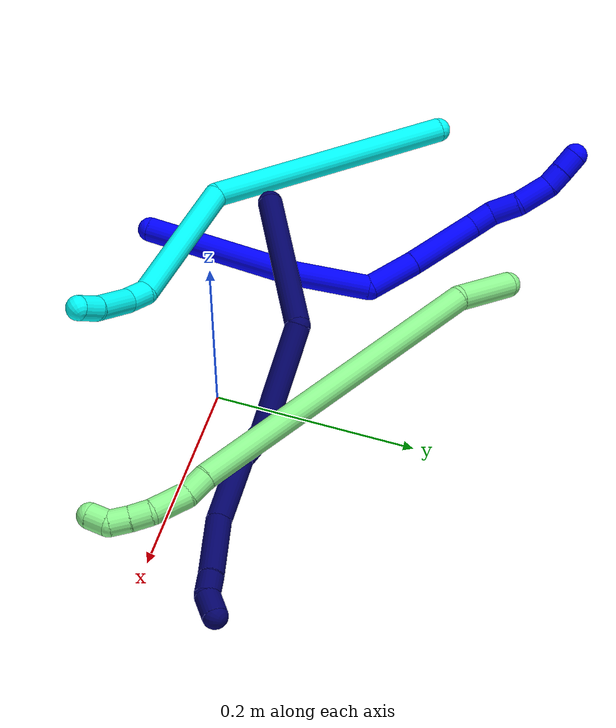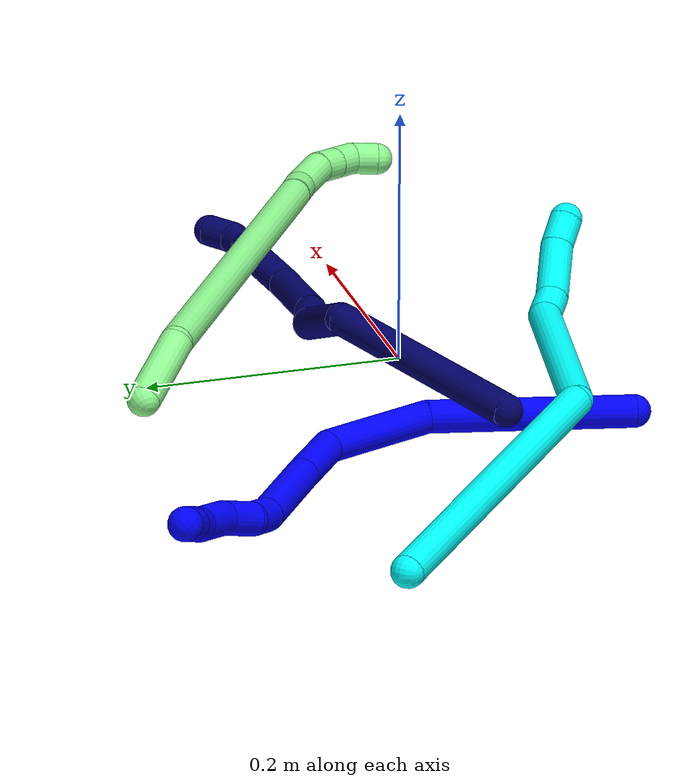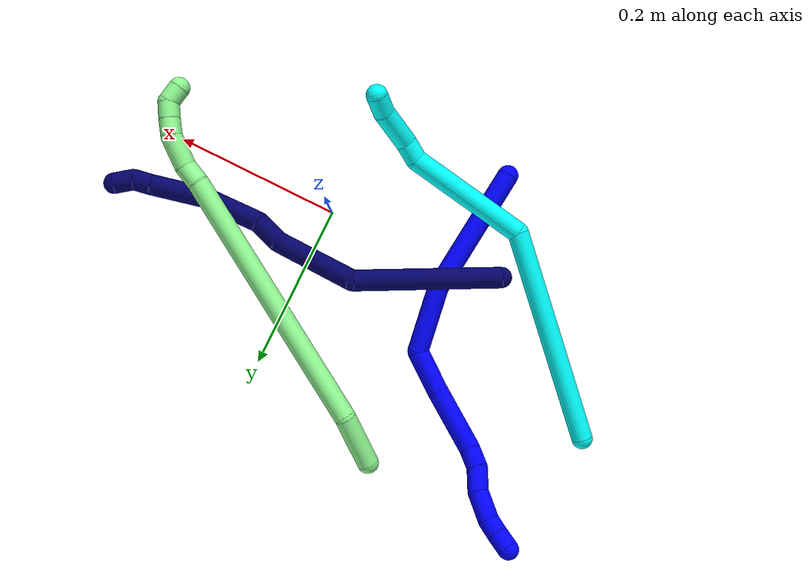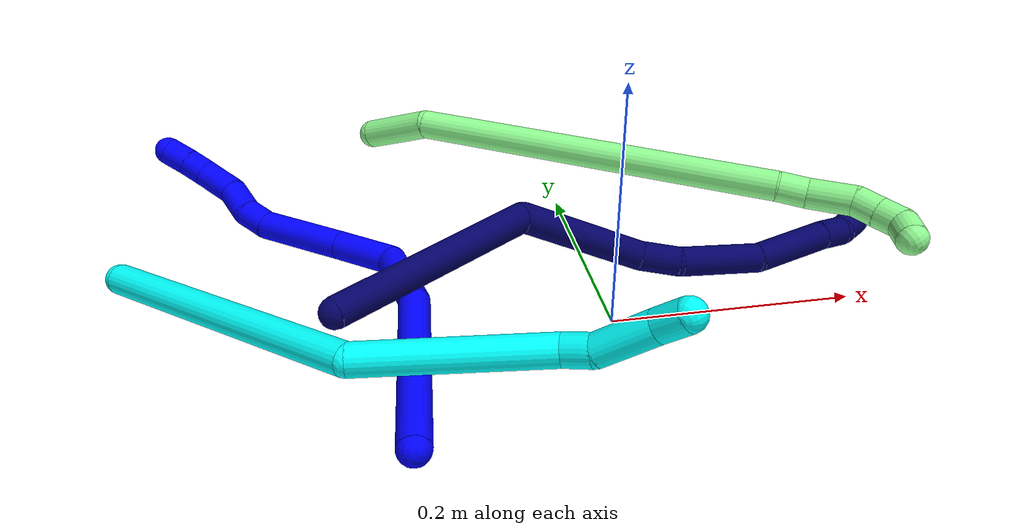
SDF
<sdf version="1.7">
 <world name="default">
  <model name="1">
   <static>0</static>
   <link name="1">
    <collision name="collision-cylinder-e_1_1_4">
     <pose>-0.033387 0.044102 0.056152 -0.665776 -0.437388 0.153386</pose>
     <geometry><cylinder><radius>0.0125</radius><length>0.157642</length></cylinder></geometry>
     <surface>
      <friction><ode><mu>1.16</mu><mu2>1.16</mu2><slip1>0</slip1><slip2>0</slip2></ode></friction>
      <contact><ode><kp>1e+06</kp><kd>1</kd><max_vel>0</max_vel><min_depth>0.001</min_depth></ode></contact>
     </surface>
    </collision>
    <visual name="visual-cylinder-e_1_1_4">
     <pose>-0.033387 0.044102 0.056152 -0.665776 -0.437388 0.153386</pose>
     <geometry><cylinder><radius>0.0125</radius><length>0.157642</length></cylinder></geometry>
     <material><ambient>0 0 1 1</ambient></material>
    </visual>
    <collision name="collision-cylinder-e_2_4_5">
     <pose>-0.074931 0.105935 0.147477 -0.466927 -0.204237 0.048727</pose>
     <geometry><cylinder><radius>0.0125</radius><length>0.080449</length></cylinder></geometry>
     <surface>
      <friction><ode><mu>1.16</mu><mu2>1.16</mu2><slip1>0</slip1><slip2>0</slip2></ode></friction>
      <contact><ode><kp>1e+06</kp><kd>1</kd><max_vel>0</max_vel><min_depth>0.001</min_depth></ode></contact>
     </surface>
    </collision>
    <visual name="visual-cylinder-e_2_4_5">
     <pose>-0.074931 0.105935 0.147477 -0.466927 -0.204237 0.048727</pose>
     <geometry><cylinder><radius>0.0125</radius><length>0.080449</length></cylinder></geometry>
     <material><ambient>0 0 1 1</ambient></material>
    </visual>
    <collision name="collision-cylinder-e_3_5_6">
     <pose>-0.068763 0.134014 0.202483 -0.480911 0.569574 -0.143316</pose>
     <geometry><cylinder><radius>0.0125</radius><length>0.053132</length></cylinder></geometry>
     <surface>
      <friction><ode><mu>1.16</mu><mu2>1.16</mu2><slip1>0</slip1><slip2>0</slip2></ode></friction>
      <contact><ode><kp>1e+06</kp><kd>1</kd><max_vel>0</max_vel><min_depth>0.001</min_depth></ode></contact>
     </surface>
    </collision>
    <visual name="visual-cylinder-e_3_5_6">
     <pose>-0.068763 0.134014 0.202483 -0.480911 0.569574 -0.143316</pose>
     <geometry><cylinder><radius>0.0125</radius><length>0.053132</length></cylinder></geometry>
     <material><ambient>0 0 1 1</ambient></material>
    </visual>
    <collision name="collision-cylinder-e_4_6_7">
     <pose>-0.031924 0.159634 0.250251 -0.500299 0.615527 -0.162073</pose>
     <geometry><cylinder><radius>0.0125</radius><length>0.077981</length></cylinder></geometry>
     <surface>
      <friction><ode><mu>1.16</mu><mu2>1.16</mu2><slip1>0</slip1><slip2>0</slip2></ode></friction>
      <contact><ode><kp>1e+06</kp><kd>1</kd><max_vel>0</max_vel><min_depth>0.001</min_depth></ode></contact>
     </surface>
    </collision>
    <visual name="visual-cylinder-e_4_6_7">
     <pose>-0.031924 0.159634 0.250251 -0.500299 0.615527 -0.162073</pose>
     <geometry><cylinder><radius>0.0125</radius><length>0.077981</length></cylinder></geometry>
     <material><ambient>0 0 1 1</ambient></material>
    </visual>
    <collision name="collision-cylinder-e_5_7_8">
     <pose>-0.003623 0.182466 0.285745 -0.785404 0.496177 -0.209083</pose>
     <geometry><cylinder><radius>0.0125</radius><length>0.02432</length></cylinder></geometry>
     <surface>
      <friction><ode><mu>1.16</mu><mu2>1.16</mu2><slip1>0</slip1><slip2>0</slip2></ode></friction>
      <contact><ode><kp>1e+06</kp><kd>1</kd><max_vel>0</max_vel><min_depth>0.001</min_depth></ode></contact>
     </surface>
    </collision>
    <visual name="visual-cylinder-e_5_7_8">
     <pose>-0.003623 0.182466 0.285745 -0.785404 0.496177 -0.209083</pose>
     <geometry><cylinder><radius>0.0125</radius><length>0.02432</length></cylinder></geometry>
     <material><ambient>0 0 1 1</ambient></material>
    </visual>
    <collision name="collision-cylinder-e_6_8_9">
     <pose>0.004477 0.201177 0.30258 -0.877043 0.158017 -0.074226</pose>
     <geometry><cylinder><radius>0.0125</radius><length>0.02937</length></cylinder></geometry>
     <surface>
      <friction><ode><mu>1.16</mu><mu2>1.16</mu2><slip1>0</slip1><slip2>0</slip2></ode></friction>
      <contact><ode><kp>1e+06</kp><kd>1</kd><max_vel>0</max_vel><min_depth>0.001</min_depth></ode></contact>
     </surface>
    </collision>
    <visual name="visual-cylinder-e_6_8_9">
     <pose>0.004477 0.201177 0.30258 -0.877043 0.158017 -0.074226</pose>
     <geometry><cylinder><radius>0.0125</radius><length>0.02937</length></cylinder></geometry>
     <material><ambient>0 0 1 1</ambient></material>
    </visual>
    <collision name="collision-cylinder-e_7_9_10">
     <pose>0.014847 0.223496 0.323175 -0.778593 0.469014 -0.195387</pose>
     <geometry><cylinder><radius>0.0125</radius><length>0.035658</length></cylinder></geometry>
     <surface>
      <friction><ode><mu>1.16</mu><mu2>1.16</mu2><slip1>0</slip1><slip2>0</slip2></ode></friction>
      <contact><ode><kp>1e+06</kp><kd>1</kd><max_vel>0</max_vel><min_depth>0.001</min_depth></ode></contact>
     </surface>
    </collision>
    <visual name="visual-cylinder-e_7_9_10">
     <pose>0.014847 0.223496 0.323175 -0.778593 0.469014 -0.195387</pose>
     <geometry><cylinder><radius>0.0125</radius><length>0.035658</length></cylinder></geometry>
     <material><ambient>0 0 1 1</ambient></material>
    </visual>
    <collision name="collision-cylinder-e_8_10_11">
     <pose>0.029128 0.241407 0.338487 -1.03641 0.671203 -0.392629</pose>
     <geometry><cylinder><radius>0.0125</radius><length>0.02001</length></cylinder></geometry>
     <surface>
      <friction><ode><mu>1.16</mu><mu2>1.16</mu2><slip1>0</slip1><slip2>0</slip2></ode></friction>
      <contact><ode><kp>1e+06</kp><kd>1</kd><max_vel>0</max_vel><min_depth>0.001</min_depth></ode></contact>
     </surface>
    </collision>
    <visual name="visual-cylinder-e_8_10_11">
     <pose>0.029128 0.241407 0.338487 -1.03641 0.671203 -0.392629</pose>
     <geometry><cylinder><radius>0.0125</radius><length>0.02001</length></cylinder></geometry>
     <material><ambient>0 0 1 1</ambient></material>
    </visual>
    <collision name="collision-cylinder-e_9_11_2">
     <pose>0.04237 0.255011 0.346784 -1.01024 0.714051 -0.406823</pose>
     <geometry><cylinder><radius>0.0125</radius><length>0.021438</length></cylinder></geometry>
     <surface>
      <friction><ode><mu>1.16</mu><mu2>1.16</mu2><slip1>0</slip1><slip2>0</slip2></ode></friction>
      <contact><ode><kp>1e+06</kp><kd>1</kd><max_vel>0</max_vel><min_depth>0.001</min_depth></ode></contact>
     </surface>
    </collision>
    <visual name="visual-cylinder-e_9_11_2">
     <pose>0.04237 0.255011 0.346784 -1.01024 0.714051 -0.406823</pose>
     <geometry><cylinder><radius>0.0125</radius><length>0.021438</length></cylinder></geometry>
     <material><ambient>0 0 1 1</ambient></material>
    </visual>
    <collision name="collision-sphere-2">
     <pose>0.04939 0.261872 0.35109 0 -0 0</pose>
     <geometry><sphere><radius>0.0125</radius></sphere></geometry>
     <surface>
      <friction><ode><mu>1.16</mu><mu2>1.16</mu2><slip1>0</slip1><slip2>0</slip2></ode></friction>
      <contact><ode><kp>1e+06</kp><kd>1</kd><max_vel>0</max_vel><min_depth>0.001</min_depth></ode></contact>
     </surface>
    </collision>
    <visual name="visual-sphere-2">
     <pose>0.04939 0.261872 0.35109 0 -0 0</pose>
     <geometry><sphere><radius>0.0125</radius></sphere></geometry>
     <material><ambient>0 0 1 1</ambient></material>
    </visual>
    <collision name="collision-sphere-11">
     <pose>0.03535 0.24815 0.342477 0 -0 0</pose>
     <geometry><sphere><radius>0.0125</radius></sphere></geometry>
     <surface>
      <friction><ode><mu>1.16</mu><mu2>1.16</mu2><slip1>0</slip1><slip2>0</slip2></ode></friction>
      <contact><ode><kp>1e+06</kp><kd>1</kd><max_vel>0</max_vel><min_depth>0.001</min_depth></ode></contact>
     </surface>
    </collision>
    <visual name="visual-sphere-11">
     <pose>0.03535 0.24815 0.342477 0 -0 0</pose>
     <geometry><sphere><radius>0.0125</radius></sphere></geometry>
     <material><ambient>0 0 1 1</ambient></material>
    </visual>
    <collision name="collision-sphere-10">
     <pose>0.022905 0.234665 0.334496 0 -0 0</pose>
     <geometry><sphere><radius>0.0125</radius></sphere></geometry>
     <surface>
      <friction><ode><mu>1.16</mu><mu2>1.16</mu2><slip1>0</slip1><slip2>0</slip2></ode></friction>
      <contact><ode><kp>1e+06</kp><kd>1</kd><max_vel>0</max_vel><min_depth>0.001</min_depth></ode></contact>
     </surface>
    </collision>
    <visual name="visual-sphere-10">
     <pose>0.022905 0.234665 0.334496 0 -0 0</pose>
     <geometry><sphere><radius>0.0125</radius></sphere></geometry>
     <material><ambient>0 0 1 1</ambient></material>
    </visual>
    <collision name="collision-sphere-9">
     <pose>0.006788 0.212328 0.311853 0 -0 0</pose>
     <geometry><sphere><radius>0.0125</radius></sphere></geometry>
     <surface>
      <friction><ode><mu>1.16</mu><mu2>1.16</mu2><slip1>0</slip1><slip2>0</slip2></ode></friction>
      <contact><ode><kp>1e+06</kp><kd>1</kd><max_vel>0</max_vel><min_depth>0.001</min_depth></ode></contact>
     </surface>
    </collision>
    <visual name="visual-sphere-9">
     <pose>0.006788 0.212328 0.311853 0 -0 0</pose>
     <geometry><sphere><radius>0.0125</radius></sphere></geometry>
     <material><ambient>0 0 1 1</ambient></material>
    </visual>
    <collision name="collision-sphere-4">
     <pose>-0.066773 0.088204 0.112305 0 -0 0</pose>
     <geometry><sphere><radius>0.0125</radius></sphere></geometry>
     <surface>
      <friction><ode><mu>1.16</mu><mu2>1.16</mu2><slip1>0</slip1><slip2>0</slip2></ode></friction>
      <contact><ode><kp>1e+06</kp><kd>1</kd><max_vel>0</max_vel><min_depth>0.001</min_depth></ode></contact>
     </surface>
    </collision>
    <visual name="visual-sphere-4">
     <pose>-0.066773 0.088204 0.112305 0 -0 0</pose>
     <geometry><sphere><radius>0.0125</radius></sphere></geometry>
     <material><ambient>0 0 1 1</ambient></material>
    </visual>
    <collision name="collision-sphere-1">
     <geometry><sphere><radius>0.0125</radius></sphere></geometry>
     <surface>
      <friction><ode><mu>1.16</mu><mu2>1.16</mu2><slip1>0</slip1><slip2>0</slip2></ode></friction>
      <contact><ode><kp>1e+06</kp><kd>1</kd><max_vel>0</max_vel><min_depth>0.001</min_depth></ode></contact>
     </surface>
    </collision>
    <visual name="visual-sphere-1">
     <geometry><sphere><radius>0.0125</radius></sphere></geometry>
     <material><ambient>0 0 1 1</ambient></material>
    </visual>
    <collision name="collision-sphere-8">
     <pose>0.002166 0.190027 0.293306 0 -0 0</pose>
     <geometry><sphere><radius>0.0125</radius></sphere></geometry>
     <surface>
      <friction><ode><mu>1.16</mu><mu2>1.16</mu2><slip1>0</slip1><slip2>0</slip2></ode></friction>
      <contact><ode><kp>1e+06</kp><kd>1</kd><max_vel>0</max_vel><min_depth>0.001</min_depth></ode></contact>
     </surface>
    </collision>
    <visual name="visual-sphere-8">
     <pose>0.002166 0.190027 0.293306 0 -0 0</pose>
     <geometry><sphere><radius>0.0125</radius></sphere></geometry>
     <material><ambient>0 0 1 1</ambient></material>
    </visual>
    <collision name="collision-sphere-5">
     <pose>-0.08309 0.123665 0.182649 0 -0 0</pose>
     <geometry><sphere><radius>0.0125</radius></sphere></geometry>
     <surface>
      <friction><ode><mu>1.16</mu><mu2>1.16</mu2><slip1>0</slip1><slip2>0</slip2></ode></friction>
      <contact><ode><kp>1e+06</kp><kd>1</kd><max_vel>0</max_vel><min_depth>0.001</min_depth></ode></contact>
     </surface>
    </collision>
    <visual name="visual-sphere-5">
     <pose>-0.08309 0.123665 0.182649 0 -0 0</pose>
     <geometry><sphere><radius>0.0125</radius></sphere></geometry>
     <material><ambient>0 0 1 1</ambient></material>
    </visual>
    <collision name="collision-sphere-6">
     <pose>-0.054437 0.144363 0.222318 0 -0 0</pose>
     <geometry><sphere><radius>0.0125</radius></sphere></geometry>
     <surface>
      <friction><ode><mu>1.16</mu><mu2>1.16</mu2><slip1>0</slip1><slip2>0</slip2></ode></friction>
      <contact><ode><kp>1e+06</kp><kd>1</kd><max_vel>0</max_vel><min_depth>0.001</min_depth></ode></contact>
     </surface>
    </collision>
    <visual name="visual-sphere-6">
     <pose>-0.054437 0.144363 0.222318 0 -0 0</pose>
     <geometry><sphere><radius>0.0125</radius></sphere></geometry>
     <material><ambient>0 0 1 1</ambient></material>
    </visual>
    <collision name="collision-sphere-7">
     <pose>-0.009412 0.174905 0.278184 0 -0 0</pose>
     <geometry><sphere><radius>0.0125</radius></sphere></geometry>
     <surface>
      <friction><ode><mu>1.16</mu><mu2>1.16</mu2><slip1>0</slip1><slip2>0</slip2></ode></friction>
      <contact><ode><kp>1e+06</kp><kd>1</kd><max_vel>0</max_vel><min_depth>0.001</min_depth></ode></contact>
     </surface>
    </collision>
    <visual name="visual-sphere-7">
     <pose>-0.009412 0.174905 0.278184 0 -0 0</pose>
     <geometry><sphere><radius>0.0125</radius></sphere></geometry>
     <material><ambient>0 0 1 1</ambient></material>
    </visual>
    <inertial>
     <pose>-0.030741 0.127313 0.185114 0 -0 0</pose>
     <mass>0.5</mass>
     <inertia>
      <ixx>0.000444</ixx>
      <ixy>0</ixy>
      <ixz>0</ixz>
      <iyy>0.000434</iyy>
      <iyz>0</iyz>
      <izz>-9.9e-05</izz>
     </inertia>
    </inertial>
   </link>
   <pose>-0.169551 -0.131616 0.011797 2.12205 -0.118477 -2.79397</pose>
  </model>
  <model name="3">
   <static>0</static>
   <link name="3">
    <collision name="collision-cylinder-e_1_1_4">
     <pose>0.107 -0.072298 -5.3e-05 1.57153 0.976581 0.977193</pose>
     <geometry><cylinder><radius>0.0125</radius><length>0.258272</length></cylinder></geometry>
     <surface>
      <friction><ode><mu>1.16</mu><mu2>1.16</mu2><slip1>0</slip1><slip2>0</slip2></ode></friction>
      <contact><ode><kp>1e+06</kp><kd>1</kd><max_vel>0</max_vel><min_depth>0.001</min_depth></ode></contact>
     </surface>
    </collision>
    <visual name="visual-cylinder-e_1_1_4">
     <pose>0.107 -0.072298 -5.3e-05 1.57153 0.976581 0.977193</pose>
     <geometry><cylinder><radius>0.0125</radius><length>0.258272</length></cylinder></geometry>
     <material><ambient>0.003922 1 0.996078 1</ambient></material>
    </visual>
    <collision name="collision-cylinder-e_2_4_5">
     <pose>0.260638 -0.179842 -0.043647 2.46108 0.694262 1.59246</pose>
     <geometry><cylinder><radius>0.0125</radius><length>0.145783</length></cylinder></geometry>
     <surface>
      <friction><ode><mu>1.16</mu><mu2>1.16</mu2><slip1>0</slip1><slip2>0</slip2></ode></friction>
      <contact><ode><kp>1e+06</kp><kd>1</kd><max_vel>0</max_vel><min_depth>0.001</min_depth></ode></contact>
     </surface>
    </collision>
    <visual name="visual-cylinder-e_2_4_5">
     <pose>0.260638 -0.179842 -0.043647 2.46108 0.694262 1.59246</pose>
     <geometry><cylinder><radius>0.0125</radius><length>0.145783</length></cylinder></geometry>
     <material><ambient>0.003922 1 0.996078 1</ambient></material>
    </visual>
    <collision name="collision-cylinder-e_3_5_6">
     <pose>0.317732 -0.220249 -0.089954 2.06296 1.06043 1.55003</pose>
     <geometry><cylinder><radius>0.0125</radius><length>0.023969</length></cylinder></geometry>
     <surface>
      <friction><ode><mu>1.16</mu><mu2>1.16</mu2><slip1>0</slip1><slip2>0</slip2></ode></friction>
      <contact><ode><kp>1e+06</kp><kd>1</kd><max_vel>0</max_vel><min_depth>0.001</min_depth></ode></contact>
     </surface>
    </collision>
    <visual name="visual-cylinder-e_3_5_6">
     <pose>0.317732 -0.220249 -0.089954 2.06296 1.06043 1.55003</pose>
     <geometry><cylinder><radius>0.0125</radius><length>0.023969</length></cylinder></geometry>
     <material><ambient>0.003922 1 0.996078 1</ambient></material>
    </visual>
    <collision name="collision-cylinder-e_4_6_7">
     <pose>0.350694 -0.227255 -0.099983 2.89263 1.24936 2.79792</pose>
     <geometry><cylinder><radius>0.0125</radius><length>0.047438</length></cylinder></geometry>
     <surface>
      <friction><ode><mu>1.16</mu><mu2>1.16</mu2><slip1>0</slip1><slip2>0</slip2></ode></friction>
      <contact><ode><kp>1e+06</kp><kd>1</kd><max_vel>0</max_vel><min_depth>0.001</min_depth></ode></contact>
     </surface>
    </collision>
    <visual name="visual-cylinder-e_4_6_7">
     <pose>0.350694 -0.227255 -0.099983 2.89263 1.24936 2.79792</pose>
     <geometry><cylinder><radius>0.0125</radius><length>0.047438</length></cylinder></geometry>
     <material><ambient>0.003922 1 0.996078 1</ambient></material>
    </visual>
    <collision name="collision-cylinder-e_5_7_2">
     <pose>0.385408 -0.229726 -0.108275 2.59584 1.47249 2.54255</pose>
     <geometry><cylinder><radius>0.0125</radius><length>0.024539</length></cylinder></geometry>
     <surface>
      <friction><ode><mu>1.16</mu><mu2>1.16</mu2><slip1>0</slip1><slip2>0</slip2></ode></friction>
      <contact><ode><kp>1e+06</kp><kd>1</kd><max_vel>0</max_vel><min_depth>0.001</min_depth></ode></contact>
     </surface>
    </collision>
    <visual name="visual-cylinder-e_5_7_2">
     <pose>0.385408 -0.229726 -0.108275 2.59584 1.47249 2.54255</pose>
     <geometry><cylinder><radius>0.0125</radius><length>0.024539</length></cylinder></geometry>
     <material><ambient>0.003922 1 0.996078 1</ambient></material>
    </visual>
    <collision name="collision-sphere-2">
     <pose>0.397618 -0.230351 -0.109304 0 -0 0</pose>
     <geometry><sphere><radius>0.0125</radius></sphere></geometry>
     <surface>
      <friction><ode><mu>1.16</mu><mu2>1.16</mu2><slip1>0</slip1><slip2>0</slip2></ode></friction>
      <contact><ode><kp>1e+06</kp><kd>1</kd><max_vel>0</max_vel><min_depth>0.001</min_depth></ode></contact>
     </surface>
    </collision>
    <visual name="visual-sphere-2">
     <pose>0.397618 -0.230351 -0.109304 0 -0 0</pose>
     <geometry><sphere><radius>0.0125</radius></sphere></geometry>
     <material><ambient>0.003922 1 0.996078 1</ambient></material>
    </visual>
    <collision name="collision-sphere-7">
     <pose>0.373198 -0.229101 -0.107246 0 -0 0</pose>
     <geometry><sphere><radius>0.0125</radius></sphere></geometry>
     <surface>
      <friction><ode><mu>1.16</mu><mu2>1.16</mu2><slip1>0</slip1><slip2>0</slip2></ode></friction>
      <contact><ode><kp>1e+06</kp><kd>1</kd><max_vel>0</max_vel><min_depth>0.001</min_depth></ode></contact>
     </surface>
    </collision>
    <visual name="visual-sphere-7">
     <pose>0.373198 -0.229101 -0.107246 0 -0 0</pose>
     <geometry><sphere><radius>0.0125</radius></sphere></geometry>
     <material><ambient>0.003922 1 0.996078 1</ambient></material>
    </visual>
    <collision name="collision-sphere-6">
     <pose>0.328189 -0.225408 -0.092721 0 -0 0</pose>
     <geometry><sphere><radius>0.0125</radius></sphere></geometry>
     <surface>
      <friction><ode><mu>1.16</mu><mu2>1.16</mu2><slip1>0</slip1><slip2>0</slip2></ode></friction>
      <contact><ode><kp>1e+06</kp><kd>1</kd><max_vel>0</max_vel><min_depth>0.001</min_depth></ode></contact>
     </surface>
    </collision>
    <visual name="visual-sphere-6">
     <pose>0.328189 -0.225408 -0.092721 0 -0 0</pose>
     <geometry><sphere><radius>0.0125</radius></sphere></geometry>
     <material><ambient>0.003922 1 0.996078 1</ambient></material>
    </visual>
    <collision name="collision-sphere-5">
     <pose>0.307275 -0.215089 -0.087188 0 -0 0</pose>
     <geometry><sphere><radius>0.0125</radius></sphere></geometry>
     <surface>
      <friction><ode><mu>1.16</mu><mu2>1.16</mu2><slip1>0</slip1><slip2>0</slip2></ode></friction>
      <contact><ode><kp>1e+06</kp><kd>1</kd><max_vel>0</max_vel><min_depth>0.001</min_depth></ode></contact>
     </surface>
    </collision>
    <visual name="visual-sphere-5">
     <pose>0.307275 -0.215089 -0.087188 0 -0 0</pose>
     <geometry><sphere><radius>0.0125</radius></sphere></geometry>
     <material><ambient>0.003922 1 0.996078 1</ambient></material>
    </visual>
    <collision name="collision-sphere-1">
     <geometry><sphere><radius>0.0125</radius></sphere></geometry>
     <surface>
      <friction><ode><mu>1.16</mu><mu2>1.16</mu2><slip1>0</slip1><slip2>0</slip2></ode></friction>
      <contact><ode><kp>1e+06</kp><kd>1</kd><max_vel>0</max_vel><min_depth>0.001</min_depth></ode></contact>
     </surface>
    </collision>
    <visual name="visual-sphere-1">
     <geometry><sphere><radius>0.0125</radius></sphere></geometry>
     <material><ambient>0.003922 1 0.996078 1</ambient></material>
    </visual>
    <collision name="collision-sphere-4">
     <pose>0.214001 -0.144596 -0.000107 0 -0 0</pose>
     <geometry><sphere><radius>0.0125</radius></sphere></geometry>
     <surface>
      <friction><ode><mu>1.16</mu><mu2>1.16</mu2><slip1>0</slip1><slip2>0</slip2></ode></friction>
      <contact><ode><kp>1e+06</kp><kd>1</kd><max_vel>0</max_vel><min_depth>0.001</min_depth></ode></contact>
     </surface>
    </collision>
    <visual name="visual-sphere-4">
     <pose>0.214001 -0.144596 -0.000107 0 -0 0</pose>
     <geometry><sphere><radius>0.0125</radius></sphere></geometry>
     <material><ambient>0.003922 1 0.996078 1</ambient></material>
    </visual>
    <inertial>
     <pose>0.198682 -0.133174 -0.031866 0 -0 0</pose>
     <mass>0.5</mass>
     <inertia>
      <ixx>0.001352</ixx>
      <ixy>0</ixy>
      <ixz>0</ixz>
      <iyy>0.001975</iyy>
      <iyz>0</iyz>
      <izz>-0.000451</izz>
     </inertia>
    </inertial>
   </link>
   <pose>-0.387659 0.110822 0.012854 1.54427 -0.715912 -0.782271</pose>
  </model>
  <model name="7">
   <static>0</static>
   <link name="7">
    <collision name="collision-cylinder-e_1_1_4">
     <pose>0.058209 0.007347 0.064604 -0.113241 0.730185 -0.043324</pose>
     <geometry><cylinder><radius>0.0125</radius><length>0.174539</length></cylinder></geometry>
     <surface>
      <friction><ode><mu>1.16</mu><mu2>1.16</mu2><slip1>0</slip1><slip2>0</slip2></ode></friction>
      <contact><ode><kp>1e+06</kp><kd>1</kd><max_vel>0</max_vel><min_depth>0.001</min_depth></ode></contact>
     </surface>
    </collision>
    <visual name="visual-cylinder-e_1_1_4">
     <pose>0.058209 0.007347 0.064604 -0.113241 0.730185 -0.043324</pose>
     <geometry><cylinder><radius>0.0125</radius><length>0.174539</length></cylinder></geometry>
     <material><ambient>0.003922 0 0.403922 1</ambient></material>
    </visual>
    <collision name="collision-cylinder-e_2_4_5">
     <pose>0.164795 0.03968 0.138106 -1.22863 1.06929 -0.791338</pose>
     <geometry><cylinder><radius>0.0125</radius><length>0.110339</length></cylinder></geometry>
     <surface>
      <friction><ode><mu>1.16</mu><mu2>1.16</mu2><slip1>0</slip1><slip2>0</slip2></ode></friction>
      <contact><ode><kp>1e+06</kp><kd>1</kd><max_vel>0</max_vel><min_depth>0.001</min_depth></ode></contact>
     </surface>
    </collision>
    <visual name="visual-cylinder-e_2_4_5">
     <pose>0.164795 0.03968 0.138106 -1.22863 1.06929 -0.791338</pose>
     <geometry><cylinder><radius>0.0125</radius><length>0.110339</length></cylinder></geometry>
     <material><ambient>0.003922 0 0.403922 1</ambient></material>
    </visual>
    <collision name="collision-cylinder-e_3_5_6">
     <pose>0.230044 0.065856 0.147138 -1.46037 1.49988 -1.39017</pose>
     <geometry><cylinder><radius>0.0125</radius><length>0.033832</length></cylinder></geometry>
     <surface>
      <friction><ode><mu>1.16</mu><mu2>1.16</mu2><slip1>0</slip1><slip2>0</slip2></ode></friction>
      <contact><ode><kp>1e+06</kp><kd>1</kd><max_vel>0</max_vel><min_depth>0.001</min_depth></ode></contact>
     </surface>
    </collision>
    <visual name="visual-cylinder-e_3_5_6">
     <pose>0.230044 0.065856 0.147138 -1.46037 1.49988 -1.39017</pose>
     <geometry><cylinder><radius>0.0125</radius><length>0.033832</length></cylinder></geometry>
     <material><ambient>0.003922 0 0.403922 1</ambient></material>
    </visual>
    <collision name="collision-cylinder-e_4_6_7">
     <pose>0.279818 0.072197 0.159146 -0.409144 1.19592 -0.280782</pose>
     <geometry><cylinder><radius>0.0125</radius><length>0.070709</length></cylinder></geometry>
     <surface>
      <friction><ode><mu>1.16</mu><mu2>1.16</mu2><slip1>0</slip1><slip2>0</slip2></ode></friction>
      <contact><ode><kp>1e+06</kp><kd>1</kd><max_vel>0</max_vel><min_depth>0.001</min_depth></ode></contact>
     </surface>
    </collision>
    <visual name="visual-cylinder-e_4_6_7">
     <pose>0.279818 0.072197 0.159146 -0.409144 1.19592 -0.280782</pose>
     <geometry><cylinder><radius>0.0125</radius><length>0.070709</length></cylinder></geometry>
     <material><ambient>0.003922 0 0.403922 1</ambient></material>
    </visual>
    <collision name="collision-cylinder-e_5_7_8">
     <pose>0.339986 0.078365 0.189409 -0.055281 0.976859 -0.02938</pose>
     <geometry><cylinder><radius>0.0125</radius><length>0.065807</length></cylinder></geometry>
     <surface>
      <friction><ode><mu>1.16</mu><mu2>1.16</mu2><slip1>0</slip1><slip2>0</slip2></ode></friction>
      <contact><ode><kp>1e+06</kp><kd>1</kd><max_vel>0</max_vel><min_depth>0.001</min_depth></ode></contact>
     </surface>
    </collision>
    <visual name="visual-cylinder-e_5_7_8">
     <pose>0.339986 0.078365 0.189409 -0.055281 0.976859 -0.02938</pose>
     <geometry><cylinder><radius>0.0125</radius><length>0.065807</length></cylinder></geometry>
     <material><ambient>0.003922 0 0.403922 1</ambient></material>
    </visual>
    <collision name="collision-cylinder-e_6_8_9">
     <pose>0.376346 0.080385 0.212956 -0.191973 1.04649 -0.110972</pose>
     <geometry><cylinder><radius>0.0125</radius><length>0.021006</length></cylinder></geometry>
     <surface>
      <friction><ode><mu>1.16</mu><mu2>1.16</mu2><slip1>0</slip1><slip2>0</slip2></ode></friction>
      <contact><ode><kp>1e+06</kp><kd>1</kd><max_vel>0</max_vel><min_depth>0.001</min_depth></ode></contact>
     </surface>
    </collision>
    <visual name="visual-cylinder-e_6_8_9">
     <pose>0.376346 0.080385 0.212956 -0.191973 1.04649 -0.110972</pose>
     <geometry><cylinder><radius>0.0125</radius><length>0.021006</length></cylinder></geometry>
     <material><ambient>0.003922 0 0.403922 1</ambient></material>
    </visual>
    <collision name="collision-cylinder-e_7_9_2">
     <pose>0.391886 0.083906 0.227777 -0.254968 0.573525 -0.075562</pose>
     <geometry><cylinder><radius>0.0125</radius><length>0.023767</length></cylinder></geometry>
     <surface>
      <friction><ode><mu>1.16</mu><mu2>1.16</mu2><slip1>0</slip1><slip2>0</slip2></ode></friction>
      <contact><ode><kp>1e+06</kp><kd>1</kd><max_vel>0</max_vel><min_depth>0.001</min_depth></ode></contact>
     </surface>
    </collision>
    <visual name="visual-cylinder-e_7_9_2">
     <pose>0.391886 0.083906 0.227777 -0.254968 0.573525 -0.075562</pose>
     <geometry><cylinder><radius>0.0125</radius><length>0.023767</length></cylinder></geometry>
     <material><ambient>0.003922 0 0.403922 1</ambient></material>
    </visual>
    <collision name="collision-sphere-2">
     <pose>0.398334 0.086424 0.237436 0 -0 0</pose>
     <geometry><sphere><radius>0.0125</radius></sphere></geometry>
     <surface>
      <friction><ode><mu>1.16</mu><mu2>1.16</mu2><slip1>0</slip1><slip2>0</slip2></ode></friction>
      <contact><ode><kp>1e+06</kp><kd>1</kd><max_vel>0</max_vel><min_depth>0.001</min_depth></ode></contact>
     </surface>
    </collision>
    <visual name="visual-sphere-2">
     <pose>0.398334 0.086424 0.237436 0 -0 0</pose>
     <geometry><sphere><radius>0.0125</radius></sphere></geometry>
     <material><ambient>0.003922 0 0.403922 1</ambient></material>
    </visual>
    <collision name="collision-sphere-9">
     <pose>0.385438 0.081389 0.218117 0 -0 0</pose>
     <geometry><sphere><radius>0.0125</radius></sphere></geometry>
     <surface>
      <friction><ode><mu>1.16</mu><mu2>1.16</mu2><slip1>0</slip1><slip2>0</slip2></ode></friction>
      <contact><ode><kp>1e+06</kp><kd>1</kd><max_vel>0</max_vel><min_depth>0.001</min_depth></ode></contact>
     </surface>
    </collision>
    <visual name="visual-sphere-9">
     <pose>0.385438 0.081389 0.218117 0 -0 0</pose>
     <geometry><sphere><radius>0.0125</radius></sphere></geometry>
     <material><ambient>0.003922 0 0.403922 1</ambient></material>
    </visual>
    <collision name="collision-sphere-4">
     <pose>0.116419 0.014695 0.129207 0 -0 0</pose>
     <geometry><sphere><radius>0.0125</radius></sphere></geometry>
     <surface>
      <friction><ode><mu>1.16</mu><mu2>1.16</mu2><slip1>0</slip1><slip2>0</slip2></ode></friction>
      <contact><ode><kp>1e+06</kp><kd>1</kd><max_vel>0</max_vel><min_depth>0.001</min_depth></ode></contact>
     </surface>
    </collision>
    <visual name="visual-sphere-4">
     <pose>0.116419 0.014695 0.129207 0 -0 0</pose>
     <geometry><sphere><radius>0.0125</radius></sphere></geometry>
     <material><ambient>0.003922 0 0.403922 1</ambient></material>
    </visual>
    <collision name="collision-sphere-1">
     <geometry><sphere><radius>0.0125</radius></sphere></geometry>
     <surface>
      <friction><ode><mu>1.16</mu><mu2>1.16</mu2><slip1>0</slip1><slip2>0</slip2></ode></friction>
      <contact><ode><kp>1e+06</kp><kd>1</kd><max_vel>0</max_vel><min_depth>0.001</min_depth></ode></contact>
     </surface>
    </collision>
    <visual name="visual-sphere-1">
     <geometry><sphere><radius>0.0125</radius></sphere></geometry>
     <material><ambient>0.003922 0 0.403922 1</ambient></material>
    </visual>
    <collision name="collision-sphere-8">
     <pose>0.367254 0.079382 0.207794 0 -0 0</pose>
     <geometry><sphere><radius>0.0125</radius></sphere></geometry>
     <surface>
      <friction><ode><mu>1.16</mu><mu2>1.16</mu2><slip1>0</slip1><slip2>0</slip2></ode></friction>
      <contact><ode><kp>1e+06</kp><kd>1</kd><max_vel>0</max_vel><min_depth>0.001</min_depth></ode></contact>
     </surface>
    </collision>
    <visual name="visual-sphere-8">
     <pose>0.367254 0.079382 0.207794 0 -0 0</pose>
     <geometry><sphere><radius>0.0125</radius></sphere></geometry>
     <material><ambient>0.003922 0 0.403922 1</ambient></material>
    </visual>
    <collision name="collision-sphere-5">
     <pose>0.213171 0.064665 0.147005 0 -0 0</pose>
     <geometry><sphere><radius>0.0125</radius></sphere></geometry>
     <surface>
      <friction><ode><mu>1.16</mu><mu2>1.16</mu2><slip1>0</slip1><slip2>0</slip2></ode></friction>
      <contact><ode><kp>1e+06</kp><kd>1</kd><max_vel>0</max_vel><min_depth>0.001</min_depth></ode></contact>
     </surface>
    </collision>
    <visual name="visual-sphere-5">
     <pose>0.213171 0.064665 0.147005 0 -0 0</pose>
     <geometry><sphere><radius>0.0125</radius></sphere></geometry>
     <material><ambient>0.003922 0 0.403922 1</ambient></material>
    </visual>
    <collision name="collision-sphere-6">
     <pose>0.246918 0.067047 0.14727 0 -0 0</pose>
     <geometry><sphere><radius>0.0125</radius></sphere></geometry>
     <surface>
      <friction><ode><mu>1.16</mu><mu2>1.16</mu2><slip1>0</slip1><slip2>0</slip2></ode></friction>
      <contact><ode><kp>1e+06</kp><kd>1</kd><max_vel>0</max_vel><min_depth>0.001</min_depth></ode></contact>
     </surface>
    </collision>
    <visual name="visual-sphere-6">
     <pose>0.246918 0.067047 0.14727 0 -0 0</pose>
     <geometry><sphere><radius>0.0125</radius></sphere></geometry>
     <material><ambient>0.003922 0 0.403922 1</ambient></material>
    </visual>
    <collision name="collision-sphere-7">
     <pose>0.312717 0.077347 0.171023 0 -0 0</pose>
     <geometry><sphere><radius>0.0125</radius></sphere></geometry>
     <surface>
      <friction><ode><mu>1.16</mu><mu2>1.16</mu2><slip1>0</slip1><slip2>0</slip2></ode></friction>
      <contact><ode><kp>1e+06</kp><kd>1</kd><max_vel>0</max_vel><min_depth>0.001</min_depth></ode></contact>
     </surface>
    </collision>
    <visual name="visual-sphere-7">
     <pose>0.312717 0.077347 0.171023 0 -0 0</pose>
     <geometry><sphere><radius>0.0125</radius></sphere></geometry>
     <material><ambient>0.003922 0 0.403922 1</ambient></material>
    </visual>
    <inertial>
     <pose>0.19101 0.043667 0.130194 0 -0 0</pose>
     <mass>0.5</mass>
     <inertia>
      <ixx>0.000375</ixx>
      <ixy>0</ixy>
      <ixz>0</ixz>
      <iyy>0.000558</iyy>
      <iyz>0</iyz>
      <izz>-0.000539</izz>
     </inertia>
    </inertial>
   </link>
   <pose>-0.213993 -0.016604 0.045424 -1.28086 0.02457 -0.348985</pose>
  </model>
  <model name="13">
   <static>0</static>
   <link name="13">
    <collision name="collision-cylinder-e_1_1_4">
     <pose>0.013349 -0.017854 0.022674 0.667034 0.433246 0.1522</pose>
     <geometry><cylinder><radius>0.0125</radius><length>0.063595</length></cylinder></geometry>
     <surface>
      <friction><ode><mu>1.16</mu><mu2>1.16</mu2><slip1>0</slip1><slip2>0</slip2></ode></friction>
      <contact><ode><kp>1e+06</kp><kd>1</kd><max_vel>0</max_vel><min_depth>0.001</min_depth></ode></contact>
     </surface>
    </collision>
    <visual name="visual-cylinder-e_1_1_4">
     <pose>0.013349 -0.017854 0.022674 0.667034 0.433246 0.1522</pose>
     <geometry><cylinder><radius>0.0125</radius><length>0.063595</length></cylinder></geometry>
     <material><ambient>0.564706 0.984314 0.572549 1</ambient></material>
    </visual>
    <collision name="collision-cylinder-e_2_4_5">
     <pose>0.134126 -0.082022 0.150115 0.416235 0.753334 0.166675</pose>
     <geometry><cylinder><radius>0.0125</radius><length>0.31408</length></cylinder></geometry>
     <surface>
      <friction><ode><mu>1.16</mu><mu2>1.16</mu2><slip1>0</slip1><slip2>0</slip2></ode></friction>
      <contact><ode><kp>1e+06</kp><kd>1</kd><max_vel>0</max_vel><min_depth>0.001</min_depth></ode></contact>
     </surface>
    </collision>
    <visual name="visual-cylinder-e_2_4_5">
     <pose>0.134126 -0.082022 0.150115 0.416235 0.753334 0.166675</pose>
     <geometry><cylinder><radius>0.0125</radius><length>0.31408</length></cylinder></geometry>
     <material><ambient>0.564706 0.984314 0.572549 1</ambient></material>
    </visual>
    <collision name="collision-cylinder-e_3_5_6">
     <pose>0.250322 -0.130019 0.263004 0.204332 0.813215 0.088236</pose>
     <geometry><cylinder><radius>0.0125</radius><length>0.024142</length></cylinder></geometry>
     <surface>
      <friction><ode><mu>1.16</mu><mu2>1.16</mu2><slip1>0</slip1><slip2>0</slip2></ode></friction>
      <contact><ode><kp>1e+06</kp><kd>1</kd><max_vel>0</max_vel><min_depth>0.001</min_depth></ode></contact>
     </surface>
    </collision>
    <visual name="visual-cylinder-e_3_5_6">
     <pose>0.250322 -0.130019 0.263004 0.204332 0.813215 0.088236</pose>
     <geometry><cylinder><radius>0.0125</radius><length>0.024142</length></cylinder></geometry>
     <material><ambient>0.564706 0.984314 0.572549 1</ambient></material>
    </visual>
    <collision name="collision-cylinder-e_4_6_7">
     <pose>0.271516 -0.139964 0.282785 0.61647 0.715693 0.237</pose>
     <geometry><cylinder><radius>0.0125</radius><length>0.037871</length></cylinder></geometry>
     <surface>
      <friction><ode><mu>1.16</mu><mu2>1.16</mu2><slip1>0</slip1><slip2>0</slip2></ode></friction>
      <contact><ode><kp>1e+06</kp><kd>1</kd><max_vel>0</max_vel><min_depth>0.001</min_depth></ode></contact>
     </surface>
    </collision>
    <visual name="visual-cylinder-e_4_6_7">
     <pose>0.271516 -0.139964 0.282785 0.61647 0.715693 0.237</pose>
     <geometry><cylinder><radius>0.0125</radius><length>0.037871</length></cylinder></geometry>
     <material><ambient>0.564706 0.984314 0.572549 1</ambient></material>
    </visual>
    <collision name="collision-cylinder-e_5_7_8">
     <pose>0.292007 -0.15344 0.297583 1.02891 0.924425 0.548977</pose>
     <geometry><cylinder><radius>0.0125</radius><length>0.02021</length></cylinder></geometry>
     <surface>
      <friction><ode><mu>1.16</mu><mu2>1.16</mu2><slip1>0</slip1><slip2>0</slip2></ode></friction>
      <contact><ode><kp>1e+06</kp><kd>1</kd><max_vel>0</max_vel><min_depth>0.001</min_depth></ode></contact>
     </surface>
    </collision>
    <visual name="visual-cylinder-e_5_7_8">
     <pose>0.292007 -0.15344 0.297583 1.02891 0.924425 0.548977</pose>
     <geometry><cylinder><radius>0.0125</radius><length>0.02021</length></cylinder></geometry>
     <material><ambient>0.564706 0.984314 0.572549 1</ambient></material>
    </visual>
    <collision name="collision-cylinder-e_6_8_9">
     <pose>0.307697 -0.164517 0.303534 1.1236 0.864565 0.565301</pose>
     <geometry><cylinder><radius>0.0125</radius><length>0.020038</length></cylinder></geometry>
     <surface>
      <friction><ode><mu>1.16</mu><mu2>1.16</mu2><slip1>0</slip1><slip2>0</slip2></ode></friction>
      <contact><ode><kp>1e+06</kp><kd>1</kd><max_vel>0</max_vel><min_depth>0.001</min_depth></ode></contact>
     </surface>
    </collision>
    <visual name="visual-cylinder-e_6_8_9">
     <pose>0.307697 -0.164517 0.303534 1.1236 0.864565 0.565301</pose>
     <geometry><cylinder><radius>0.0125</radius><length>0.020038</length></cylinder></geometry>
     <material><ambient>0.564706 0.984314 0.572549 1</ambient></material>
    </visual>
    <collision name="collision-cylinder-e_7_9_2">
     <pose>0.320689 -0.178144 0.302954 1.98264 0.564895 0.834793</pose>
     <geometry><cylinder><radius>0.0125</radius><length>0.020063</length></cylinder></geometry>
     <surface>
      <friction><ode><mu>1.16</mu><mu2>1.16</mu2><slip1>0</slip1><slip2>0</slip2></ode></friction>
      <contact><ode><kp>1e+06</kp><kd>1</kd><max_vel>0</max_vel><min_depth>0.001</min_depth></ode></contact>
     </surface>
    </collision>
    <visual name="visual-cylinder-e_7_9_2">
     <pose>0.320689 -0.178144 0.302954 1.98264 0.564895 0.834793</pose>
     <geometry><cylinder><radius>0.0125</radius><length>0.020063</length></cylinder></geometry>
     <material><ambient>0.564706 0.984314 0.572549 1</ambient></material>
    </visual>
    <collision name="collision-sphere-2">
     <pose>0.326059 -0.185909 0.299562 0 -0 0</pose>
     <geometry><sphere><radius>0.0125</radius></sphere></geometry>
     <surface>
      <friction><ode><mu>1.16</mu><mu2>1.16</mu2><slip1>0</slip1><slip2>0</slip2></ode></friction>
      <contact><ode><kp>1e+06</kp><kd>1</kd><max_vel>0</max_vel><min_depth>0.001</min_depth></ode></contact>
     </surface>
    </collision>
    <visual name="visual-sphere-2">
     <pose>0.326059 -0.185909 0.299562 0 -0 0</pose>
     <geometry><sphere><radius>0.0125</radius></sphere></geometry>
     <material><ambient>0.564706 0.984314 0.572549 1</ambient></material>
    </visual>
    <collision name="collision-sphere-9">
     <pose>0.315319 -0.170379 0.306346 0 -0 0</pose>
     <geometry><sphere><radius>0.0125</radius></sphere></geometry>
     <surface>
      <friction><ode><mu>1.16</mu><mu2>1.16</mu2><slip1>0</slip1><slip2>0</slip2></ode></friction>
      <contact><ode><kp>1e+06</kp><kd>1</kd><max_vel>0</max_vel><min_depth>0.001</min_depth></ode></contact>
     </surface>
    </collision>
    <visual name="visual-sphere-9">
     <pose>0.315319 -0.170379 0.306346 0 -0 0</pose>
     <geometry><sphere><radius>0.0125</radius></sphere></geometry>
     <material><ambient>0.564706 0.984314 0.572549 1</ambient></material>
    </visual>
    <collision name="collision-sphere-4">
     <pose>0.026699 -0.035709 0.045348 0 -0 0</pose>
     <geometry><sphere><radius>0.0125</radius></sphere></geometry>
     <surface>
      <friction><ode><mu>1.16</mu><mu2>1.16</mu2><slip1>0</slip1><slip2>0</slip2></ode></friction>
      <contact><ode><kp>1e+06</kp><kd>1</kd><max_vel>0</max_vel><min_depth>0.001</min_depth></ode></contact>
     </surface>
    </collision>
    <visual name="visual-sphere-4">
     <pose>0.026699 -0.035709 0.045348 0 -0 0</pose>
     <geometry><sphere><radius>0.0125</radius></sphere></geometry>
     <material><ambient>0.564706 0.984314 0.572549 1</ambient></material>
    </visual>
    <collision name="collision-sphere-1">
     <geometry><sphere><radius>0.0125</radius></sphere></geometry>
     <surface>
      <friction><ode><mu>1.16</mu><mu2>1.16</mu2><slip1>0</slip1><slip2>0</slip2></ode></friction>
      <contact><ode><kp>1e+06</kp><kd>1</kd><max_vel>0</max_vel><min_depth>0.001</min_depth></ode></contact>
     </surface>
    </collision>
    <visual name="visual-sphere-1">
     <geometry><sphere><radius>0.0125</radius></sphere></geometry>
     <material><ambient>0.564706 0.984314 0.572549 1</ambient></material>
    </visual>
    <collision name="collision-sphere-8">
     <pose>0.300074 -0.158654 0.300722 0 -0 0</pose>
     <geometry><sphere><radius>0.0125</radius></sphere></geometry>
     <surface>
      <friction><ode><mu>1.16</mu><mu2>1.16</mu2><slip1>0</slip1><slip2>0</slip2></ode></friction>
      <contact><ode><kp>1e+06</kp><kd>1</kd><max_vel>0</max_vel><min_depth>0.001</min_depth></ode></contact>
     </surface>
    </collision>
    <visual name="visual-sphere-8">
     <pose>0.300074 -0.158654 0.300722 0 -0 0</pose>
     <geometry><sphere><radius>0.0125</radius></sphere></geometry>
     <material><ambient>0.564706 0.984314 0.572549 1</ambient></material>
    </visual>
    <collision name="collision-sphere-5">
     <pose>0.241553 -0.128336 0.254881 0 -0 0</pose>
     <geometry><sphere><radius>0.0125</radius></sphere></geometry>
     <surface>
      <friction><ode><mu>1.16</mu><mu2>1.16</mu2><slip1>0</slip1><slip2>0</slip2></ode></friction>
      <contact><ode><kp>1e+06</kp><kd>1</kd><max_vel>0</max_vel><min_depth>0.001</min_depth></ode></contact>
     </surface>
    </collision>
    <visual name="visual-sphere-5">
     <pose>0.241553 -0.128336 0.254881 0 -0 0</pose>
     <geometry><sphere><radius>0.0125</radius></sphere></geometry>
     <material><ambient>0.564706 0.984314 0.572549 1</ambient></material>
    </visual>
    <collision name="collision-sphere-6">
     <pose>0.259092 -0.131702 0.271126 0 -0 0</pose>
     <geometry><sphere><radius>0.0125</radius></sphere></geometry>
     <surface>
      <friction><ode><mu>1.16</mu><mu2>1.16</mu2><slip1>0</slip1><slip2>0</slip2></ode></friction>
      <contact><ode><kp>1e+06</kp><kd>1</kd><max_vel>0</max_vel><min_depth>0.001</min_depth></ode></contact>
     </surface>
    </collision>
    <visual name="visual-sphere-6">
     <pose>0.259092 -0.131702 0.271126 0 -0 0</pose>
     <geometry><sphere><radius>0.0125</radius></sphere></geometry>
     <material><ambient>0.564706 0.984314 0.572549 1</ambient></material>
    </visual>
    <collision name="collision-sphere-7">
     <pose>0.283941 -0.148225 0.294444 0 -0 0</pose>
     <geometry><sphere><radius>0.0125</radius></sphere></geometry>
     <surface>
      <friction><ode><mu>1.16</mu><mu2>1.16</mu2><slip1>0</slip1><slip2>0</slip2></ode></friction>
      <contact><ode><kp>1e+06</kp><kd>1</kd><max_vel>0</max_vel><min_depth>0.001</min_depth></ode></contact>
     </surface>
    </collision>
    <visual name="visual-sphere-7">
     <pose>0.283941 -0.148225 0.294444 0 -0 0</pose>
     <geometry><sphere><radius>0.0125</radius></sphere></geometry>
     <material><ambient>0.564706 0.984314 0.572549 1</ambient></material>
    </visual>
    <inertial>
     <pose>0.155604 -0.090617 0.167647 0 -0 0</pose>
     <mass>0.5</mass>
     <inertia>
      <ixx>0.002241</ixx>
      <ixy>0</ixy>
      <ixz>0</ixz>
      <iyy>0.002794</iyy>
      <iyz>0</iyz>
      <izz>-0.000986</izz>
     </inertia>
    </inertial>
   </link>
   <pose>-0.169155 0.244032 0.06769 -0.925178 0.762592 -0.916468</pose>
  </model>
 </world>
</sdf>
